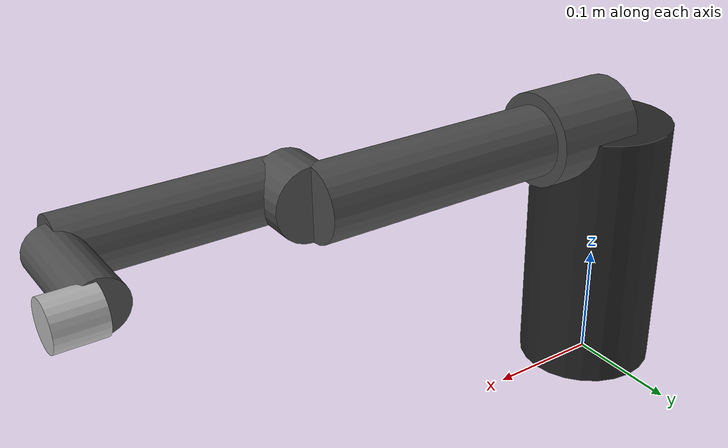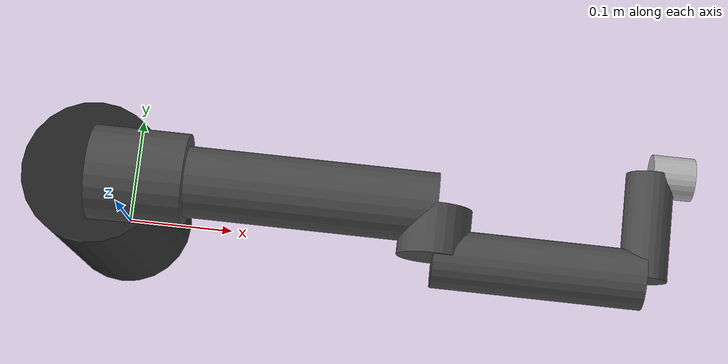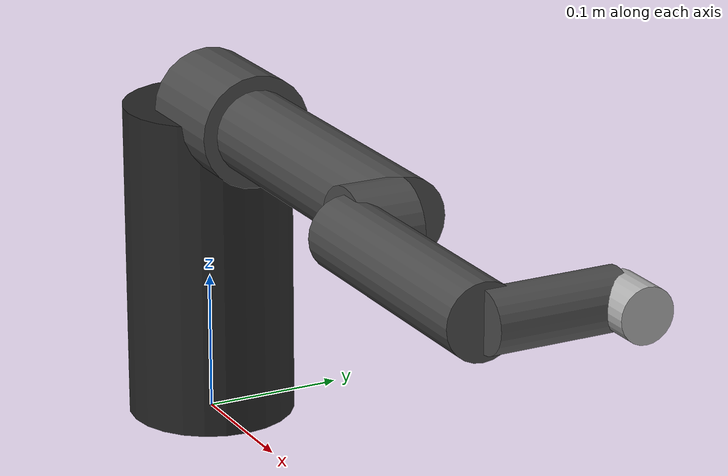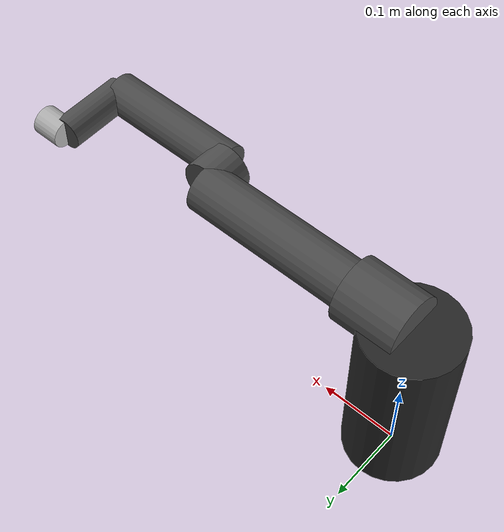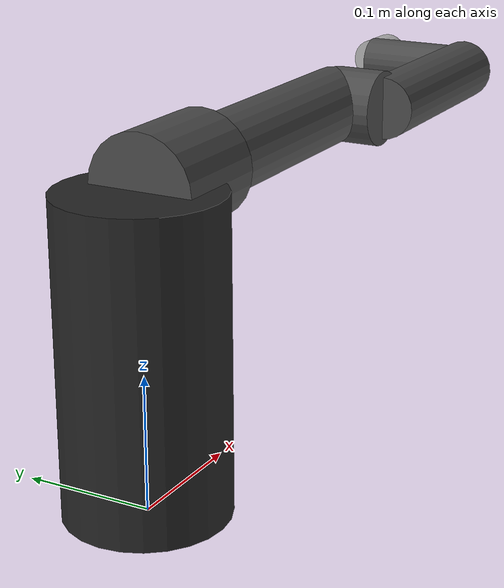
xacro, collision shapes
<?xml version="1.0"?>
<robot name="dorna2" xmlns:xacro="http://ros.org/wiki/xacro">
  <xacro:arg name="model" default="dorna_ta"/>
  <xacro:arg name="parent" default="world"/>
  <xacro:arg name="use_mesh" default="true"/>

  <xacro:property name="model" value="$(arg model)"/>

  <xacro:if value="${model == 'dorna_ta'}">
    <xacro:include filename="$(find dorna2_description)/urdf/dorna_ta.urdf.xacro"/>
  </xacro:if>

  <xacro:if value="${model == 'dorna_2' or model == 'dorna_2s'}">
    <xacro:include filename="$(find dorna2_description)/urdf/dorna_2.urdf.xacro"/>
  </xacro:if>
</robot>

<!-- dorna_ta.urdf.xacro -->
<robot name="dorna_ta" xmlns:xacro="http://ros.org/wiki/xacro">

  <xacro:include filename="$(find dorna2_description)/urdf/materials.xacro"/>

  <xacro:arg name="parent" default="world"/>
  <xacro:arg name="use_mesh" default="true"/>

  <xacro:property name="PI" value="3.14159265358979"/>
  <xacro:property name="mesh_dir" value="package://dorna2_description/meshes/dorna_ta"/>
  <xacro:property name="use_mesh" value="$(arg use_mesh)"/>

  <!-- DH parameters (meters) -->
  <xacro:property name="d0" value="0.230018"/>
  <xacro:property name="a1" value="0.080"/>
  <xacro:property name="a2" value="0.210"/>
  <xacro:property name="d3" value="0.0418"/>
  <xacro:property name="d4" value="0.175"/>
  <xacro:property name="d5" value="-0.089"/>
  <xacro:property name="d6" value="0.035"/>

  <!-- Default inertia for lightweight links -->
  <xacro:macro name="default_inertia" params="mass">
    <inertial>
      <mass value="${mass}"/>
      <inertia ixx="0.001" ixy="0.0" ixz="0.0" iyy="0.001" iyz="0.0" izz="0.001"/>
    </inertial>
  </xacro:macro>

  <!-- Visual origins: transform CAD-frame meshes into each link's local frame.
       CAD frame -> URDF: RotZ(-PI/2) + Z offset of d0.
       Per-link origin: T_link_inv @ T_cad at zero config. -->

  <!-- World link (if standalone) -->
  <link name="$(arg parent)"/>

  <!-- Base link -->
  <link name="base_link">
    <xacro:if value="${use_mesh}">
      <visual>
        <origin xyz="0 0 ${d0}" rpy="0 0 ${-PI/2}"/>
        <geometry><mesh filename="${mesh_dir}/base.stl" scale="0.001 0.001 0.001"/></geometry>
        <material name="dorna_black"/>
      </visual>
    </xacro:if>
    <xacro:unless value="${use_mesh}">
      <visual>
        <origin xyz="0 0 0" rpy="0 0 0"/>
        <geometry><cylinder length="${d0}" radius="0.06"/></geometry>
        <material name="dorna_black"/>
      </visual>
    </xacro:unless>
    <collision>
      <origin xyz="0 0 ${d0/2}" rpy="0 0 0"/>
      <geometry>
        <cylinder length="${d0}" radius="0.06"/>
      </geometry>
    </collision>
    <xacro:default_inertia mass="2.0"/>
  </link>

  <joint name="base_fixed" type="fixed">
    <parent link="$(arg parent)"/>
    <child link="base_link"/>
    <origin xyz="0 0 0" rpy="0 0 0"/>
  </joint>

  <!-- Joint 0: base rotation -->
  <link name="link0">
    <xacro:if value="${use_mesh}">
      <visual>
        <origin xyz="0 0 0" rpy="0 0 ${-PI/2}"/>
        <geometry><mesh filename="${mesh_dir}/link0.stl" scale="0.001 0.001 0.001"/></geometry>
        <material name="dorna_dark_grey"/>
      </visual>
    </xacro:if>
    <xacro:unless value="${use_mesh}">
      <visual>
        <origin xyz="0 0 0" rpy="0 0 0"/>
        <geometry><cylinder length="0.08" radius="0.04"/></geometry>
        <material name="dorna_dark_grey"/>
      </visual>
    </xacro:unless>
    <collision>
      <origin xyz="${a1/2} 0 0" rpy="0 ${PI/2} 0"/>
      <geometry>
        <cylinder length="${a1}" radius="0.04"/>
      </geometry>
    </collision>
    <xacro:default_inertia mass="1.5"/>
  </link>

  <joint name="joint0" type="revolute">
    <parent link="base_link"/>
    <child link="link0"/>
    <origin xyz="0 0 ${d0}" rpy="0 0 0"/>
    <axis xyz="0 0 1"/>
    <limit lower="${-160*PI/180}" upper="${180*PI/180}" velocity="${PI}" effort="50"/>
  </joint>

  <!-- Joint 1 -->
  <link name="link1">
    <xacro:if value="${use_mesh}">
      <visual>
        <origin xyz="${-a1} 0 0" rpy="${-PI/2} ${-PI/2} 0"/>
        <geometry><mesh filename="${mesh_dir}/link1.stl" scale="0.001 0.001 0.001"/></geometry>
        <material name="dorna_dark_grey"/>
      </visual>
    </xacro:if>
    <xacro:unless value="${use_mesh}">
      <visual>
        <origin xyz="0 0 0" rpy="0 0 0"/>
        <geometry><cylinder length="0.21" radius="0.03"/></geometry>
        <material name="dorna_dark_grey"/>
      </visual>
    </xacro:unless>
    <collision>
      <origin xyz="${a2/2} 0 0" rpy="0 ${PI/2} 0"/>
      <geometry>
        <cylinder length="${a2}" radius="0.03"/>
      </geometry>
    </collision>
    <xacro:default_inertia mass="1.2"/>
  </link>

  <joint name="joint1" type="revolute">
    <parent link="link0"/>
    <child link="link1"/>
    <origin xyz="${a1} 0 0" rpy="${PI/2} 0 0"/>
    <axis xyz="0 0 1"/>
    <limit lower="${-90*PI/180}" upper="${190*PI/180}" velocity="${PI}" effort="50"/>
  </joint>

  <!-- Joint 2 -->
  <link name="link2">
    <xacro:if value="${use_mesh}">
      <visual>
        <origin xyz="${-(a1+a2)} 0 0" rpy="${-PI/2} ${-PI/2} 0"/>
        <geometry><mesh filename="${mesh_dir}/link2.stl" scale="0.001 0.001 0.001"/></geometry>
        <material name="dorna_dark_grey"/>
      </visual>
    </xacro:if>
    <xacro:unless value="${use_mesh}">
      <visual>
        <origin xyz="0 0 0" rpy="0 0 0"/>
        <geometry><cylinder length="0.04" radius="0.03"/></geometry>
        <material name="dorna_dark_grey"/>
      </visual>
    </xacro:unless>
    <collision>
      <origin xyz="0 0 ${d3/2}" rpy="0 0 0"/>
      <geometry>
        <cylinder length="${d3}" radius="0.03"/>
      </geometry>
    </collision>
    <xacro:default_inertia mass="1.0"/>
  </link>

  <joint name="joint2" type="revolute">
    <parent link="link1"/>
    <child link="link2"/>
    <origin xyz="${a2} 0 0" rpy="0 0 0"/>
    <axis xyz="0 0 1"/>
    <limit lower="${-150*PI/180}" upper="${150*PI/180}" velocity="${PI}" effort="50"/>
  </joint>

  <!-- Joint 3 -->
  <link name="link3">
    <xacro:if value="${use_mesh}">
      <visual>
        <origin xyz="0 ${-d3} ${-(a1+a2)}" rpy="${PI/2} 0 ${PI/2}"/>
        <geometry><mesh filename="${mesh_dir}/link3.stl" scale="0.001 0.001 0.001"/></geometry>
        <material name="dorna_dark_grey"/>
      </visual>
    </xacro:if>
    <xacro:unless value="${use_mesh}">
      <visual>
        <origin xyz="0 0 0" rpy="0 0 0"/>
        <geometry><cylinder length="0.175" radius="0.025"/></geometry>
        <material name="dorna_dark_grey"/>
      </visual>
    </xacro:unless>
    <collision>
      <origin xyz="0 0 ${d4/2}" rpy="0 0 0"/>
      <geometry>
        <cylinder length="${d4}" radius="0.025"/>
      </geometry>
    </collision>
    <xacro:default_inertia mass="0.8"/>
  </link>

  <joint name="joint3" type="revolute">
    <parent link="link2"/>
    <child link="link3"/>
    <origin xyz="0 0 ${d3}" rpy="${PI/2} 0 ${PI/2}"/>
    <axis xyz="0 0 1"/>
    <limit lower="${-160*PI/180}" upper="${170*PI/180}" velocity="${PI}" effort="30"/>
  </joint>

  <!-- Joint 4 -->
  <link name="link4">
    <xacro:if value="${use_mesh}">
      <visual>
        <origin xyz="0 ${-(a1+a2+d4)} ${-d3}" rpy="0 ${-PI/2} 0"/>
        <geometry><mesh filename="${mesh_dir}/link4.stl" scale="0.001 0.001 0.001"/></geometry>
        <material name="dorna_dark_grey"/>
      </visual>
    </xacro:if>
    <xacro:unless value="${use_mesh}">
      <visual>
        <origin xyz="0 0 0" rpy="0 0 0"/>
        <geometry><cylinder length="0.089" radius="0.02"/></geometry>
        <material name="dorna_dark_grey"/>
      </visual>
    </xacro:unless>
    <collision>
      <origin xyz="0 0 ${d5/2}" rpy="0 0 0"/>
      <geometry>
        <cylinder length="${-d5}" radius="0.02"/>
      </geometry>
    </collision>
    <xacro:default_inertia mass="0.5"/>
  </link>

  <joint name="joint4" type="revolute">
    <parent link="link3"/>
    <child link="link4"/>
    <origin xyz="0 0 ${d4}" rpy="${PI/2} 0 ${PI}"/>
    <axis xyz="0 0 1"/>
    <limit lower="${-170*PI/180}" upper="${160*PI/180}" velocity="${PI}" effort="20"/>
  </joint>

  <!-- Joint 5 -->
  <link name="link5">
    <xacro:if value="${use_mesh}">
      <visual>
        <origin xyz="0 ${d5-d3} ${-(a1+a2+d4)}" rpy="${PI/2} 0 ${PI/2}"/>
        <geometry><mesh filename="${mesh_dir}/link5.stl" scale="0.001 0.001 0.001"/></geometry>
        <material name="dorna_light_grey"/>
      </visual>
    </xacro:if>
    <xacro:unless value="${use_mesh}">
      <visual>
        <origin xyz="0 0 0" rpy="0 0 0"/>
        <geometry><cylinder length="0.035" radius="0.018"/></geometry>
        <material name="dorna_light_grey"/>
      </visual>
    </xacro:unless>
    <collision>
      <origin xyz="0 0 ${d6/2}" rpy="0 0 0"/>
      <geometry>
        <cylinder length="${d6}" radius="0.018"/>
      </geometry>
    </collision>
    <xacro:default_inertia mass="0.3"/>
  </link>

  <joint name="joint5" type="revolute">
    <parent link="link4"/>
    <child link="link5"/>
    <origin xyz="0 0 ${d5}" rpy="${PI/2} 0 ${PI}"/>
    <axis xyz="0 0 1"/>
    <limit lower="${-179*PI/180}" upper="${179*PI/180}" velocity="${PI}" effort="10"/>
  </joint>

  <!-- Flange (tool mounting point) -->
  <link name="flange">
    <xacro:default_inertia mass="0.05"/>
  </link>

  <joint name="flange_fixed" type="fixed">
    <parent link="link5"/>
    <child link="flange"/>
    <origin xyz="0 0 ${d6}" rpy="0 0 0"/>
  </joint>

  <!-- TCP (tool center point, configurable offset) -->
  <link name="tcp"/>

  <joint name="tcp_fixed" type="fixed">
    <parent link="flange"/>
    <child link="tcp"/>
    <origin xyz="0 0 0" rpy="0 0 0"/>
  </joint>

</robot>

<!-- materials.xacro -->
<robot xmlns:xacro="http://ros.org/wiki/xacro">
  <material name="dorna_black">
    <color rgba="0.15 0.15 0.15 1.0"/>
  </material>
  <material name="dorna_dark_grey">
    <color rgba="0.3 0.3 0.3 1.0"/>
  </material>
  <material name="dorna_light_grey">
    <color rgba="0.7 0.7 0.7 1.0"/>
  </material>
  <material name="dorna_blue">
    <color rgba="0.2 0.4 0.8 1.0"/>
  </material>
  <material name="dorna_orange">
    <color rgba="0.9 0.5 0.1 1.0"/>
  </material>
  <material name="dorna_red">
    <color rgba="0.8 0.1 0.1 1.0"/>
  </material>
</robot>
